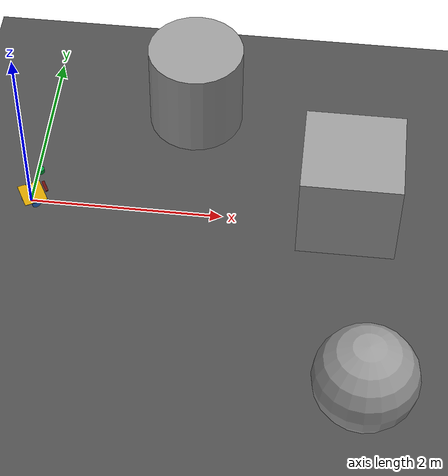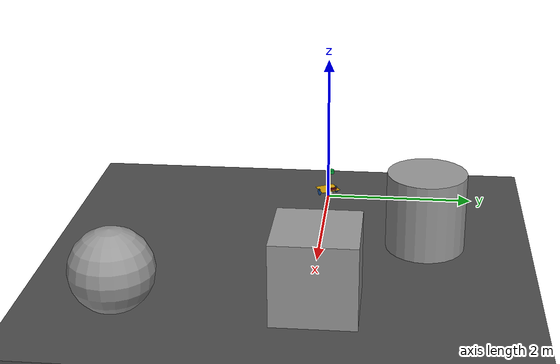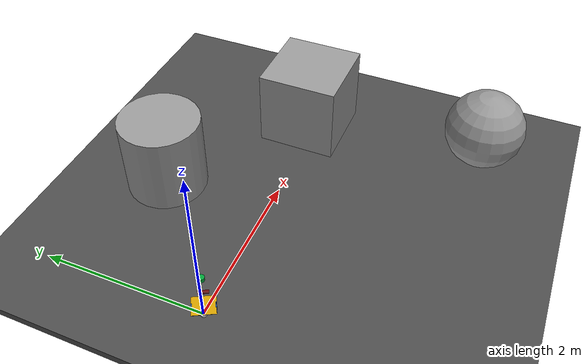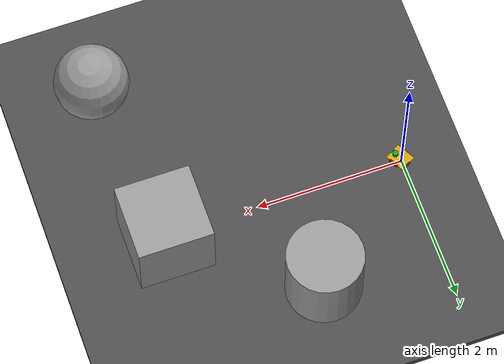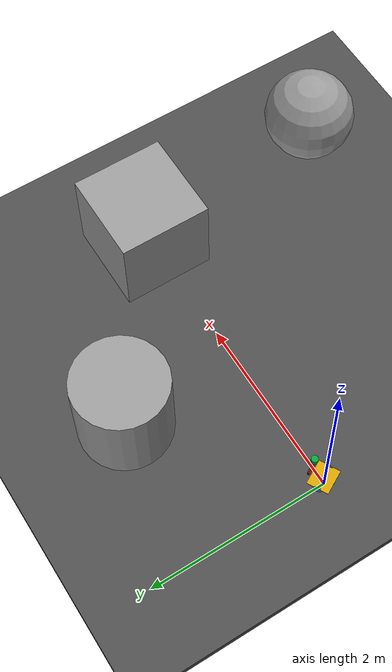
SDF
<sdf version="1.7">
 <world name="default">
  <light name="sun" type="directional">
   <pose>0 0 10 0 -0 0</pose>
   <diffuse>0.8 0.8 0.8 1</diffuse>
   <specular>0.2 0.2 0.2 1</specular>
   <attenuation>
    <range>1000</range>
    <constant>0.9</constant>
    <linear>0.01</linear>
    <quadratic>0.001</quadratic>
   </attenuation>
   <direction>-0.5 0.1 -0.9</direction>
   <spot><inner_angle>0</inner_angle><outer_angle>0</outer_angle><falloff>0</falloff></spot>
  </light>
  <model name="ground_plane">
   <static>1</static>
   <link name="link">
    <collision name="collision">
     <geometry><plane><normal>0 0 1</normal><size>100 100</size></plane></geometry>
     <surface><friction><ode><mu>100</mu><mu2>50</mu2></ode></friction></surface>
    </collision>
    <visual name="visual">
     <cast_shadows>0</cast_shadows>
     <geometry><plane><normal>0 0 1</normal><size>100 100</size></plane></geometry>
     <material>
      <script><uri>file://media/materials/scripts/gazebo.material</uri><name>Gazebo/Grey</name></script>
     </material>
    </visual>
   </link>
  </model>
  <gravity>0 0 -9.8</gravity>
  <magnetic_field>6e-06 2.3e-05 -4.2e-05</magnetic_field>
  <atmosphere type="adiabatic"/>
  <physics type="ode">
   <max_step_size>0.001</max_step_size>
   <real_time_factor>1</real_time_factor>
   <real_time_update_rate>1000</real_time_update_rate>
  </physics>
  <scene><ambient>0.4 0.4 0.4 1</ambient><background>0.7 0.7 0.7 1</background><shadows>1</shadows></scene>
  <spherical_coordinates>
   <surface_model>EARTH_WGS84</surface_model>
   <latitude_deg>0</latitude_deg>
   <longitude_deg>0</longitude_deg>
   <elevation>0</elevation>
   <heading_deg>0</heading_deg>
  </spherical_coordinates>
  <model name="asphalt_plane">
   <static>1</static>
   <link name="link">
    <collision name="collision"><geometry><box><size>20 20 0.1</size></box></geometry></collision>
    <visual name="visual">
     <cast_shadows>0</cast_shadows>
     <geometry><box><size>20 20 0.1</size></box></geometry>
     <material>
      <script>
       <uri>model://asphalt_plane/materials/scripts</uri>
       <uri>model://asphalt_plane/materials/textures</uri>
       <name>vrc/asphalt</name>
      </script>
     </material>
    </visual>
   </link>
   <pose>-0.089672 0.059574 0 0 -0 0</pose>
  </model>
  <light name="user_directional_light_0" type="directional">
   <pose>-5.63054 -11.2657 1 0 -0 0</pose>
   <diffuse>0.5 0.5 0.5 1</diffuse>
   <specular>0.1 0.1 0.1 1</specular>
   <direction>0.1 0.1 -0.9</direction>
   <attenuation>
    <range>20</range>
    <constant>0.5</constant>
    <linear>0.01</linear>
    <quadratic>0.001</quadratic>
   </attenuation>
   <spot><inner_angle>0</inner_angle><outer_angle>0</outer_angle><falloff>0</falloff></spot>
  </light>
  <light name="user_directional_light_1" type="directional">
   <pose>10.4762 9.60881 1 0 -0 0</pose>
   <diffuse>0.5 0.5 0.5 1</diffuse>
   <specular>0.1 0.1 0.1 1</specular>
   <direction>0.1 0.1 -0.9</direction>
   <attenuation>
    <range>20</range>
    <constant>0.5</constant>
    <linear>0.01</linear>
    <quadratic>0.001</quadratic>
   </attenuation>
   <spot><inner_angle>0</inner_angle><outer_angle>0</outer_angle><falloff>0</falloff></spot>
  </light>
  <model name="linorobot2">
   <link name="base_footprint">
    <inertial>
     <pose>0.024622 0 0.105538 0 -0 0</pose>
     <mass>1.255</mass>
     <inertia>
      <ixx>0.0165746</ixx>
      <ixy>0</ixy>
      <ixz>-0.00386688</ixz>
      <iyy>0.018371</iyy>
      <iyz>0</iyz>
      <izz>0.014814</izz>
     </inertia>
    </inertial>
    <collision name="base_footprint_fixed_joint_lump__base_link_collision">
     <pose>0 0 0.075 0 -0 0</pose>
     <geometry><box><size>0.24 0.275 0.003</size></box></geometry>
    </collision>
    <collision name="base_footprint_fixed_joint_lump__camera_link_collision_1">
     <pose>0.14 0 0.12 0 -0 0</pose>
     <geometry><box><size>0.03 0.124 0.03</size></box></geometry>
    </collision>
    <collision name="base_footprint_fixed_joint_lump__front_caster_wheel_link_collision_2">
     <pose>0.0825 0 0.0375 0 -0 0</pose>
     <geometry><sphere><radius>0.0375</radius></sphere></geometry>
     <surface><friction><ode><mu>0.01</mu><mu2>0.01</mu2></ode></friction></surface>
    </collision>
    <collision name="base_footprint_fixed_joint_lump__laser_collision_3">
     <pose>0.12 0 0.38 0 -0 0</pose>
     <geometry><cylinder><length>0.05</length><radius>0.0375</radius></cylinder></geometry>
    </collision>
    <collision name="base_footprint_fixed_joint_lump__rear_caster_wheel_link_collision_4">
     <pose>-0.0825 0 0.0375 0 -0 0</pose>
     <geometry><sphere><radius>0.0375</radius></sphere></geometry>
     <surface><friction><ode><mu>0.01</mu><mu2>0.01</mu2></ode></friction></surface>
    </collision>
    <visual name="base_footprint_fixed_joint_lump__base_link_visual">
     <pose>0 0 0.075 0 -0 0</pose>
     <geometry><box><size>0.24 0.275 0.003</size></box></geometry>
     <material>
      <ambient>0.8392 0.6314 0 1</ambient>
      <diffuse>0.8392 0.6314 0 1</diffuse>
      <specular>0.99 0.99 0.99 1</specular>
      <emissive>0 0 0 0</emissive>
     </material>
    </visual>
    <visual name="base_footprint_fixed_joint_lump__camera_link_visual_1">
     <pose>0.14 0 0.12 0 -0 0</pose>
     <geometry><box><size>0.03 0.124 0.03</size></box></geometry>
     <material>
      <ambient>0.416 0.051 0.047 1</ambient>
      <diffuse>0.416 0.051 0.047 1</diffuse>
      <specular>0.416 0.051 0.047 1</specular>
      <emissive>0.416 0.051 0.047 1</emissive>
     </material>
    </visual>
    <visual name="base_footprint_fixed_joint_lump__front_caster_wheel_link_visual_2">
     <pose>0.0825 0 0.0375 0 -0 0</pose>
     <geometry><sphere><radius>0.0375</radius></sphere></geometry>
    </visual>
    <visual name="base_footprint_fixed_joint_lump__laser_visual_3">
     <pose>0.12 0 0.38 0 -0 0</pose>
     <geometry><cylinder><length>0.05</length><radius>0.0375</radius></cylinder></geometry>
     <material>
      <ambient>0.003 0.639 0.223 1</ambient>
      <diffuse>0.003 0.639 0.223 1</diffuse>
      <specular>0.003 0.639 0.223 1</specular>
      <emissive>0 0 0 0</emissive>
     </material>
    </visual>
    <visual name="base_footprint_fixed_joint_lump__rear_caster_wheel_link_visual_4">
     <pose>-0.0825 0 0.0375 0 -0 0</pose>
     <geometry><sphere><radius>0.0375</radius></sphere></geometry>
    </visual>
    <sensor name="camera" type="depth">
     <always_on>1</always_on>
     <update_rate>30</update_rate>
     <camera name="camera">
      <horizontal_fov>1.50098</horizontal_fov>
      <image><width>640</width><height>480</height><format>R8G8B8</format></image>
      <clip><near>0.1</near><far>100</far></clip>
     </camera>
     <plugin name="camera_controller" filename="libgazebo_ros_camera.so">
      <ros>
       <remapping>/camera/camera_info:=/camera/color/camera_info</remapping>
       <remapping>/camera/image_raw:=/camera/color/image_raw</remapping>
       <remapping>/camera/points:=/camera/depth/color/points</remapping>
       <remapping>/camera/depth/image_raw:=/camera/depth/image_rect_raw</remapping>
      </ros>
      <min_depth>0.015</min_depth>
      <max_depth>3.0</max_depth>
      <hack_baseline>0.07</hack_baseline>
      <frame_name>camera_depth_link</frame_name>
      <distortion_k1>0.00000001</distortion_k1>
      <distortion_k2>0.00000001</distortion_k2>
      <distortion_k3>0.00000001</distortion_k3>
      <distortion_t1>0.00000001</distortion_t1>
      <distortion_t2>0.00000001</distortion_t2>
     </plugin>
     <pose>0.14 0 0.12 0 -0 0</pose>
    </sensor>
    <sensor name="imu_sensor" type="imu">
     <always_on>1</always_on>
     <update_rate>20</update_rate>
     <visualize>1</visualize>
     <topic>__default_topic__</topic>
     <plugin name="imu_plugin" filename="libgazebo_ros_imu_sensor.so">
      <ros><remapping>~/out:=imu/data</remapping></ros>
      <topicName>imu/data</topicName>
      <bodyName>imu_link</bodyName>
      <updateRateHZ>10.0</updateRateHZ>
      <gaussianNoise>0.0</gaussianNoise>
      <xyzOffset>0 0 0</xyzOffset>
      <rpyOffset>0 0 0</rpyOffset>
      <frameName>imu_link</frameName>
      <initialOrientationAsReference>0</initialOrientationAsReference>
     </plugin>
     <pose>0 0 0.075 0 -0 0</pose>
    </sensor>
    <sensor name="laser_head_hokuyo_sensor" type="ray">
     <always_on>1</always_on>
     <update_rate>10</update_rate>
     <visualize>0</visualize>
     <ray>
      <scan>
       <horizontal>
        <samples>360</samples>
        <resolution>1</resolution>
        <min_angle>-3.1416</min_angle>
        <max_angle>3.1416</max_angle>
       </horizontal>
       <vertical><samples>1</samples><min_angle>0</min_angle><max_angle>0</max_angle></vertical>
      </scan>
      <range><min>0.08</min><max>12</max><resolution>0.01</resolution></range>
     </ray>
     <plugin name="laser_gazebo_ros_head_hokuyo_controller" filename="libgazebo_ros_ray_sensor.so">
      <ros><remapping>~/out:=scan</remapping></ros>
      <output_type>sensor_msgs/LaserScan</output_type>
      <alwaysOn>1</alwaysOn>
      <updateRate>10</updateRate>
      <topicName>scan</topicName>
      <frame_name>laser</frame_name>
      <output_type>sensor_msgs/LaserScan</output_type>
     </plugin>
     <pose>0.12 0 0.405 0 -0 0</pose>
    </sensor>
   </link>
   <joint name="left_wheel_joint" type="revolute">
    <pose relative_to="base_footprint">0 0.13 0.045 0 -0 0</pose>
    <parent>base_footprint</parent>
    <child>left_wheel_link</child>
    <axis>
     <xyz>0 1 0</xyz>
     <limit><lower>-1e+16</lower><upper>1e+16</upper></limit>
     <dynamics><spring_reference>0</spring_reference><spring_stiffness>0</spring_stiffness></dynamics>
    </axis>
   </joint>
   <link name="left_wheel_link">
    <pose relative_to="left_wheel_joint">0 0 0 0 -0 0</pose>
    <inertial>
     <mass>0.1</mass>
     <inertia><ixx>8.1e-05</ixx><ixy>0</ixy><ixz>0</ixz><iyy>8.1e-05</iyy><iyz>0</iyz><izz>8.1e-05</izz></inertia>
    </inertial>
    <collision name="left_wheel_link_collision">
     <pose>0 0 0 1.5708 -0 0</pose>
     <geometry><cylinder><length>0.01</length><radius>0.045</radius></cylinder></geometry>
    </collision>
    <visual name="left_wheel_link_visual">
     <pose>0 0 0 1.5708 -0 0</pose>
     <geometry><cylinder><length>0.01</length><radius>0.045</radius></cylinder></geometry>
     <material>
      <ambient>0.1764 0.4588 0.8509 1</ambient>
      <diffuse>0.1764 0.4588 0.8509 1</diffuse>
      <specular>0.1764 0.4588 0.8509 1</specular>
      <emissive>0 0 0 0</emissive>
     </material>
    </visual>
   </link>
   <joint name="right_wheel_joint" type="revolute">
    <pose relative_to="base_footprint">0 -0.13 0.045 0 -0 0</pose>
    <parent>base_footprint</parent>
    <child>right_wheel_link</child>
    <axis>
     <xyz>0 1 0</xyz>
     <limit><lower>-1e+16</lower><upper>1e+16</upper></limit>
     <dynamics><spring_reference>0</spring_reference><spring_stiffness>0</spring_stiffness></dynamics>
    </axis>
   </joint>
   <link name="right_wheel_link">
    <pose relative_to="right_wheel_joint">0 0 0 0 -0 0</pose>
    <inertial>
     <mass>0.1</mass>
     <inertia><ixx>8.1e-05</ixx><ixy>0</ixy><ixz>0</ixz><iyy>8.1e-05</iyy><iyz>0</iyz><izz>8.1e-05</izz></inertia>
    </inertial>
    <collision name="right_wheel_link_collision">
     <pose>0 0 0 1.5708 -0 0</pose>
     <geometry><cylinder><length>0.01</length><radius>0.045</radius></cylinder></geometry>
    </collision>
    <visual name="right_wheel_link_visual">
     <pose>0 0 0 1.5708 -0 0</pose>
     <geometry><cylinder><length>0.01</length><radius>0.045</radius></cylinder></geometry>
     <material>
      <ambient>0.1764 0.4588 0.8509 1</ambient>
      <diffuse>0.1764 0.4588 0.8509 1</diffuse>
      <specular>0.1764 0.4588 0.8509 1</specular>
      <emissive>0 0 0 0</emissive>
     </material>
    </visual>
   </link>
   <static>0</static>
   <plugin name="differential_drive_controller" filename="libgazebo_ros_diff_drive.so">
    <ros><argument>odom:=odom/unfiltered</argument></ros>
    <updateRate>100</updateRate>
    <left_joint>left_wheel_joint</left_joint>
    <right_joint>right_wheel_joint</right_joint>
    <wheel_separation>0.26</wheel_separation>
    <wheel_diameter>0.09</wheel_diameter>
    <max_wheel_acceleration>1.0</max_wheel_acceleration>
    <robot_base_frame>base_footprint</robot_base_frame>
    <publish_odom>1</publish_odom>
    <publish_odom_tf>0</publish_odom_tf>
    <publish_wheel_tf>1</publish_wheel_tf>
    <odometry_frame>odom</odometry_frame>
   </plugin>
   <pose>0.023745 -0.004486 0.049999 1e-05 -1.8e-05 0.498341</pose>
  </model>
  <model name="unit_box">
   <pose>3.28573 0.100082 0.55 0 -0 1e-06</pose>
   <link name="link">
    <inertial>
     <mass>1</mass>
     <inertia>
      <ixx>0.166667</ixx>
      <ixy>0</ixy>
      <ixz>0</ixz>
      <iyy>0.166667</iyy>
      <iyz>0</iyz>
      <izz>0.166667</izz>
     </inertia>
    </inertial>
    <collision name="collision"><geometry><box><size>1 1 1</size></box></geometry></collision>
    <visual name="visual">
     <geometry><box><size>1 1 1</size></box></geometry>
     <material>
      <script><name>Gazebo/Grey</name><uri>file://media/materials/scripts/gazebo.material</uri></script>
     </material>
    </visual>
   </link>
  </model>
  <model name="unit_cylinder">
   <pose>1.58068 1.34468 0.550001 -2e-06 -1e-06 1e-05</pose>
   <link name="link">
    <inertial>
     <mass>1</mass>
     <inertia><ixx>0.145833</ixx><ixy>0</ixy><ixz>0</ixz><iyy>0.145833</iyy><iyz>0</iyz><izz>0.125</izz></inertia>
    </inertial>
    <collision name="collision">
     <geometry><cylinder><radius>0.5</radius><length>1</length></cylinder></geometry>
    </collision>
    <visual name="visual">
     <geometry><cylinder><radius>0.5</radius><length>1</length></cylinder></geometry>
     <material>
      <script><name>Gazebo/Grey</name><uri>file://media/materials/scripts/gazebo.material</uri></script>
     </material>
    </visual>
   </link>
  </model>
  <model name="unit_sphere">
   <pose>3.53372 -2.18496 0.55 0 -0 0</pose>
   <link name="link">
    <inertial>
     <mass>1</mass>
     <inertia><ixx>0.1</ixx><ixy>0</ixy><ixz>0</ixz><iyy>0.1</iyy><iyz>0</iyz><izz>0.1</izz></inertia>
    </inertial>
    <collision name="collision"><geometry><sphere><radius>0.5</radius></sphere></geometry></collision>
    <visual name="visual">
     <geometry><sphere><radius>0.5</radius></sphere></geometry>
     <material>
      <script><name>Gazebo/Grey</name><uri>file://media/materials/scripts/gazebo.material</uri></script>
     </material>
    </visual>
   </link>
  </model>
 </world>
</sdf>
